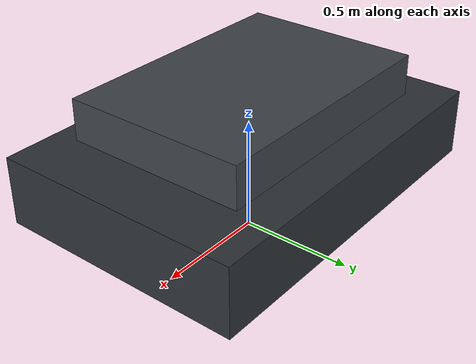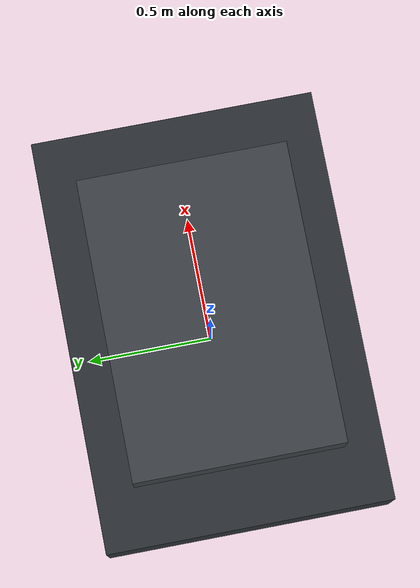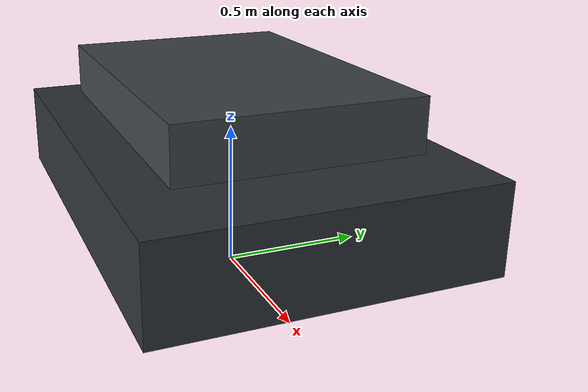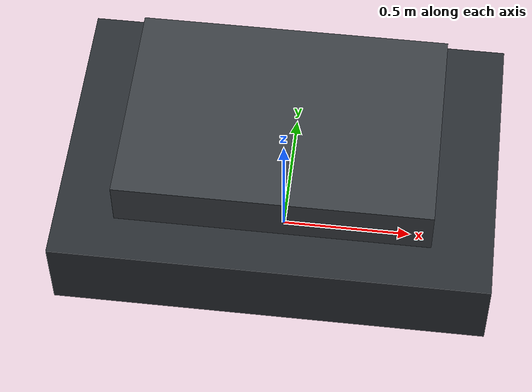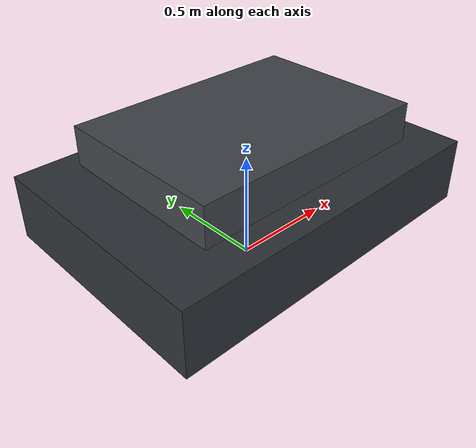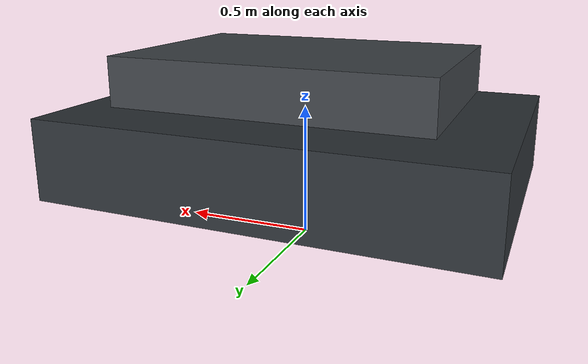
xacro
<?xml version="1.0"?>

<robot xmlns:xacro="http://www.ros.org/wiki/xacro">

    <!-- Main chassis dimensions -->
    <xacro:property name="chassis_length" value="1.6"/>
    <xacro:property name="chassis_width" value="1.1"/>
    <xacro:property name="chassis_height" value="0.30"/>
    <xacro:property name="chassis_z" value="0.35"/>
    <xacro:property name="chassis_mass" value="20.0"/>

    <!-- Main body -->
    <link name="base_link">

        <visual>
            <origin xyz="0 0 ${chassis_z}"/>
            <geometry>
                <box size="${chassis_length} ${chassis_width} ${chassis_height}"/>
            </geometry>

            <material name="chassis_material">
                <color rgba="0.18 0.20 0.22 1"/>
            </material>
        </visual>

        <collision>
            <origin xyz="0 0 ${chassis_z}"/>
            <geometry>
                <box size="${chassis_length} ${chassis_width} ${chassis_height}"/>
            </geometry>
        </collision>

        <inertial>
            <origin xyz="0 0 ${chassis_z}"/>
            <mass value="${chassis_mass}"/>

            <inertia
                ixx="2.167"
                ixy="0.0"
                ixz="0.0"
                iyy="4.417"
                iyz="0.0"
                izz="6.283"/>
        </inertial>

    </link>

    <!-- Raised central equipment deck -->
    <link name="equipment_deck">

        <visual>
            <origin xyz="0 0 0.12"/>
            <geometry>
                <box size="1.15 0.80 0.18"/>
            </geometry>

            <material name="deck_material">
                <color rgba="0.25 0.27 0.29 1"/>
            </material>
        </visual>

        <collision>
            <origin xyz="0 0 0.12"/>
            <geometry>
                <box size="1.15 0.80 0.18"/>
            </geometry>
        </collision>

        <inertial>
            <origin xyz="0 0 0.12"/>
            <mass value="4.0"/>

            <inertia
                ixx="0.2"
                ixy="0.0"
                ixz="0.0"
                iyy="0.2"
                iyz="0.0"
                izz="0.2"/>
        </inertial>

    </link>

    <joint name="equipment_deck_joint" type="fixed">

        <parent link="base_link"/>
        <child link="equipment_deck"/>

        <origin xyz="0 0 ${chassis_z + chassis_height/2}"/>

    </joint>

</robot>
